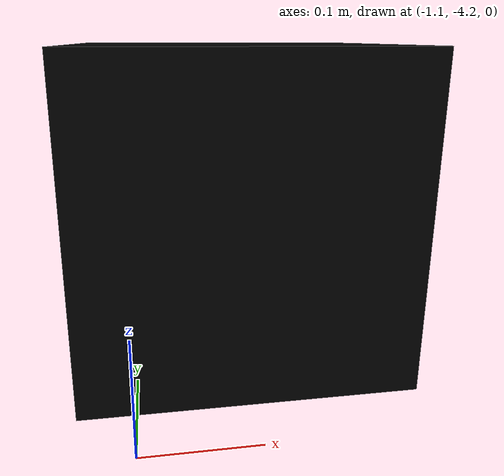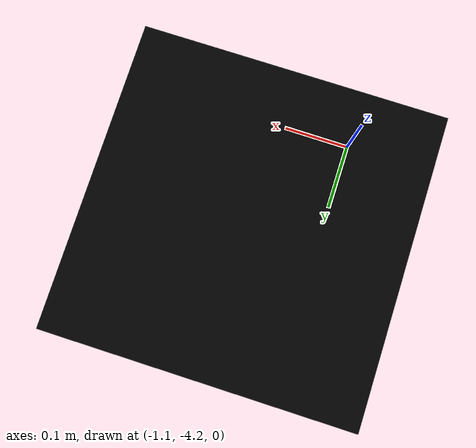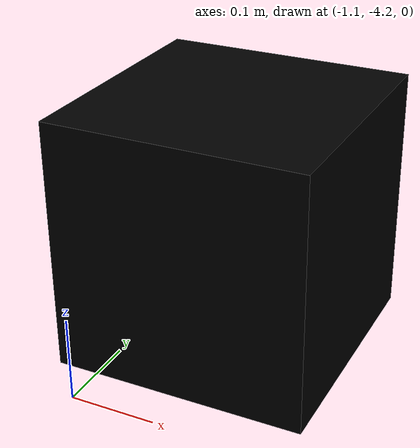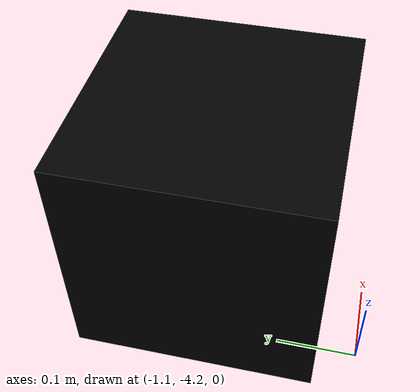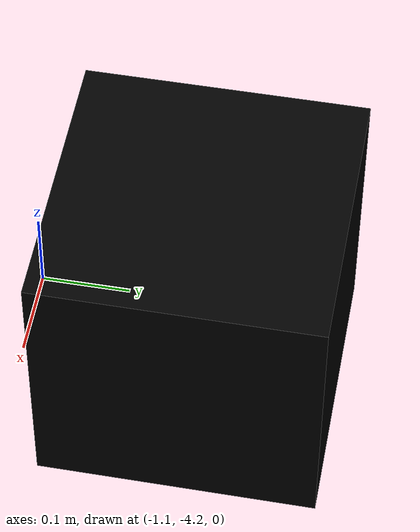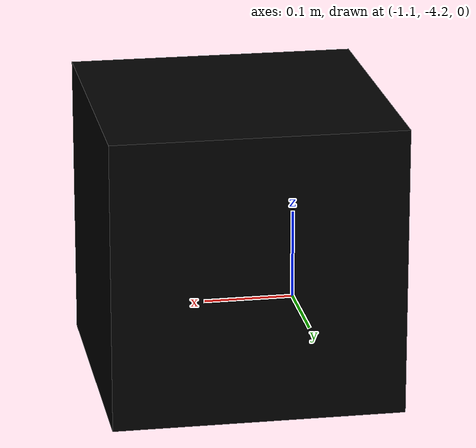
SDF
<?xml version='1.0'?>
<sdf version='1.4'>
  <model name="AruCo_Block_4">
    <static>true</static>
    <link name='chassis'>
            <pose>-1 -4 0.15 0 0 0</pose>

            <collision name='collision'>
              <geometry>
                <box>
                  <size>.3 .3 .3</size>
                </box>
              </geometry>
            </collision>

            <visual name='visual_4'>
              <geometry>
                <box>
                  <size>.3 .3 .3</size>
                </box>
              </geometry>
              <material>
                <script>
                <uri>model://AruCo_Block_4/materials/scripts</uri>
                <uri>model://AruCo_Block_4/materials/textures</uri>
                <name>block4</name>
                </script>
                <ambient>0 0 0 1</ambient>
                <diffuse>0 0 0 1</diffuse>
                <specular>0 0 0 0</specular>
                <emissive>1 1 1 1</emissive>
              </material>
            </visual>
          </link>
  </model>
</sdf>
